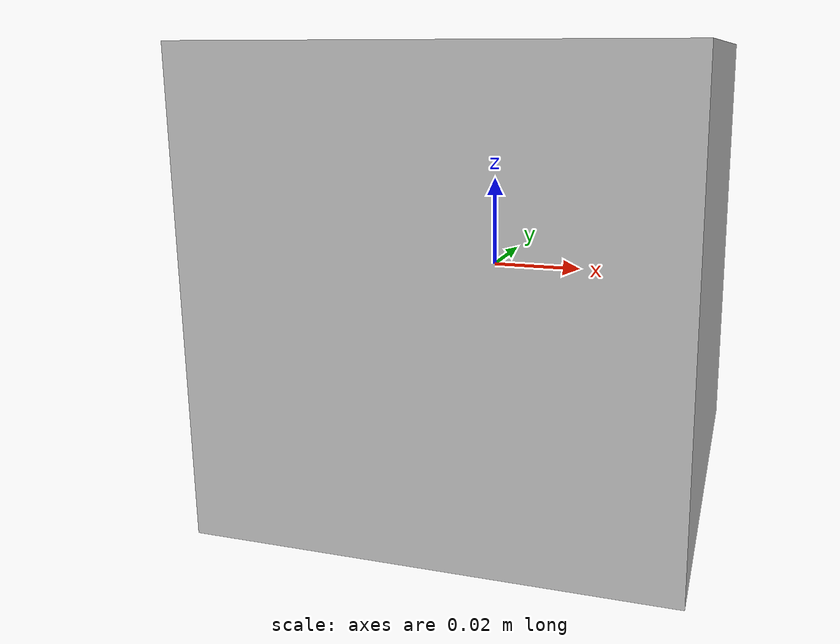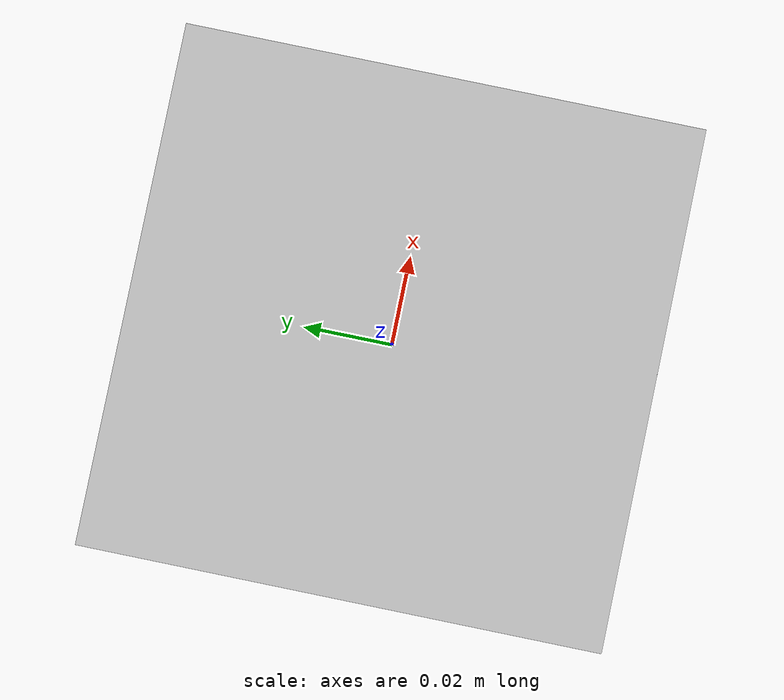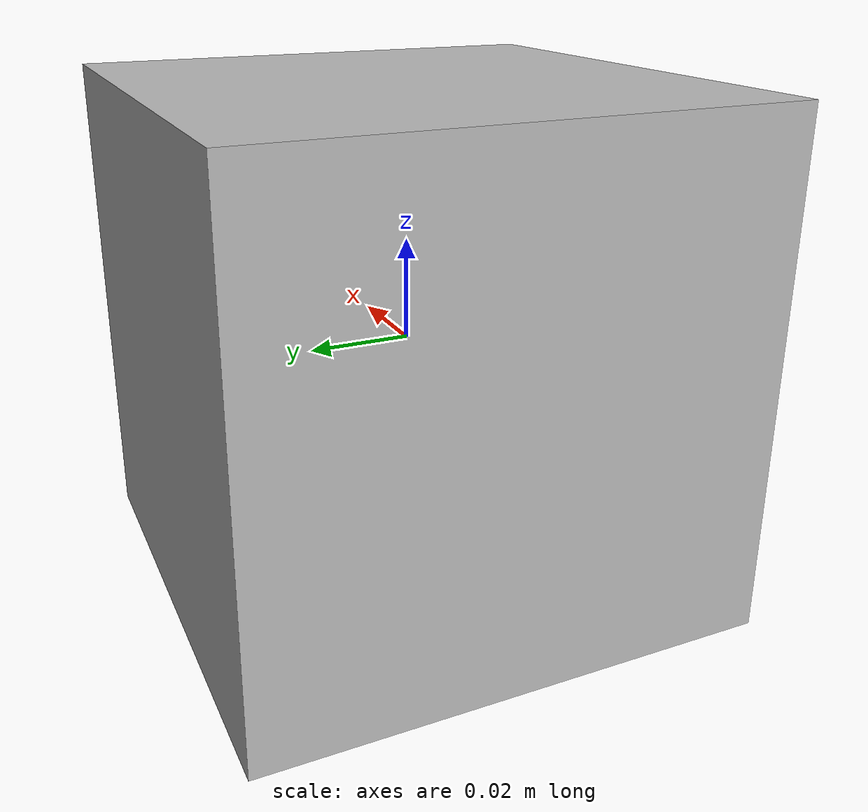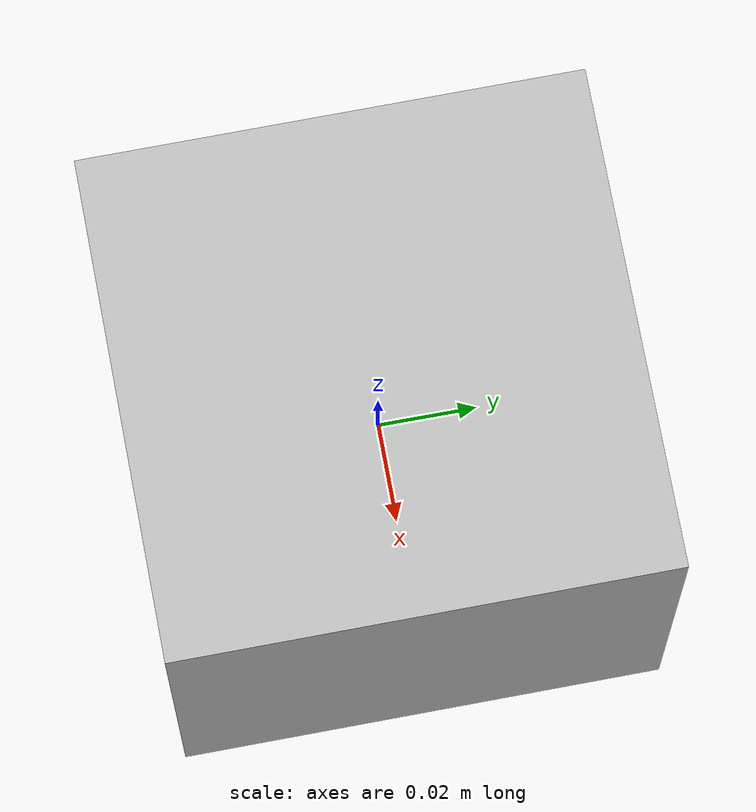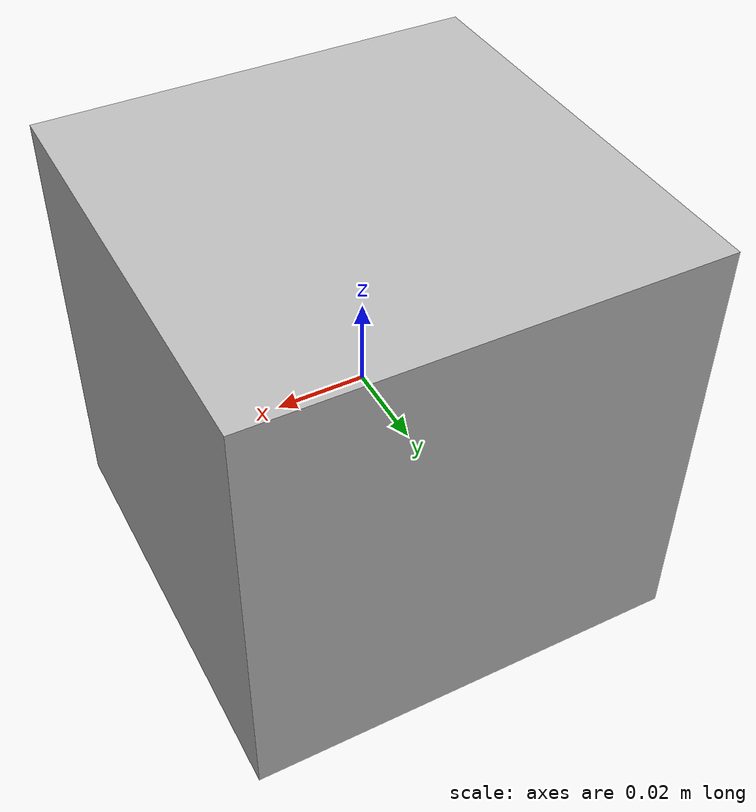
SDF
<?xml version='1.0'?>
<sdf version='1.6'>
  <model name='codebar_box_a0'>
    <link name='link_codebar_box_a0'>
      <inertial>
        <mass>0.160</mass>
        <inertia>
          <ixx>0.000272</ixx>
          <ixy>0</ixy>
          <ixz>0</ixz>
          <iyy>0.000272</iyy>
          <iyz>0</iyz>
          <izz>0.000272</izz>
        </inertia>
        <pose>0 0 0 0 -0 0</pose>
      </inertial>
      <self_collide>0</self_collide>
      <enable_wind>0</enable_wind>
      <kinematic>0</kinematic>
      <pose>0 0 0 0 -0 0</pose>
      <gravity>1</gravity>
      <visual name='visual'>
        <pose frame=''>0 0 0 0 -0 0</pose>
        <geometry>
          <mesh>
            <uri>model://codebar_box_a0/meshes/codebar_box_a0.obj</uri>
            <scale>1 1 1</scale>
          </mesh>
        </geometry>
        <transparency>0</transparency>
        <cast_shadows>1</cast_shadows>
      </visual>
      <collision name='collision'>
        <laser_retro>1</laser_retro>
        <max_contacts>100000</max_contacts>
        <pose>0 0 0 0 -0 0</pose>
        <geometry>
          <box>
            <size>0.1 0.1 0.1</size>
          </box>
        </geometry>
        <surface>
          <friction>
            <ode>
              <mu>1</mu>
              <mu2>1</mu2>
              <fdir1>0 0 0</fdir1>
              <slip1>0</slip1>
              <slip2>0</slip2>
            </ode>
            <torsional>
              <coefficient>1</coefficient>
              <patch_radius>1</patch_radius>
              <surface_radius>1</surface_radius>
              <use_patch_radius>1</use_patch_radius>
              <ode>
                <slip>0</slip>
              </ode>
            </torsional>
          </friction>
          <bounce>
            <restitution_coefficient>0</restitution_coefficient>
            <threshold>1e+06</threshold>
          </bounce>
          <contact>
            <collide_without_contact>0</collide_without_contact>
            <collide_without_contact_bitmask>1</collide_without_contact_bitmask>
            <collide_bitmask>1</collide_bitmask>
            <ode>
              <soft_cfm>0</soft_cfm>
              <soft_erp>0.2</soft_erp>
              <kp>1e+13</kp>
              <kd>1</kd>
              <max_vel>0.01</max_vel>
              <min_depth>0</min_depth>
            </ode>
            <bullet>
              <split_impulse>1</split_impulse>
              <split_impulse_penetration_threshold>-0.01</split_impulse_penetration_threshold>
              <soft_cfm>0</soft_cfm>
              <soft_erp>0.2</soft_erp>
              <kp>1e+13</kp>
              <kd>1</kd>
            </bullet>
          </contact>
        </surface>
      </collision>
    </link>
    <static>0</static>
    <allow_a0uto_disable>1</allow_a0uto_disable>
  </model>
</sdf>
